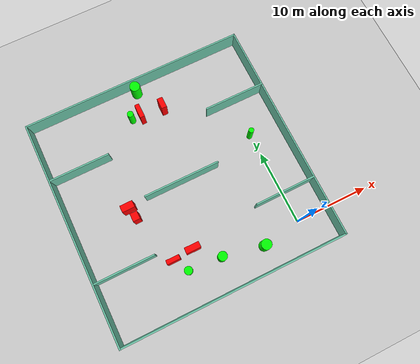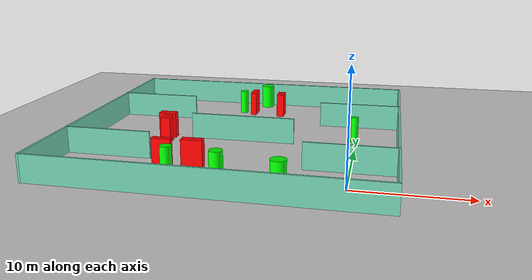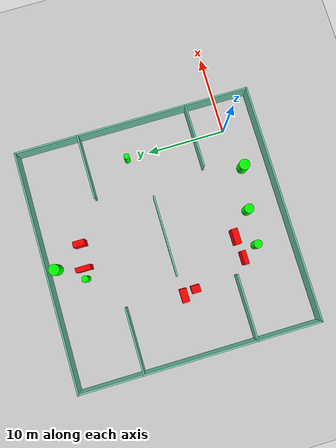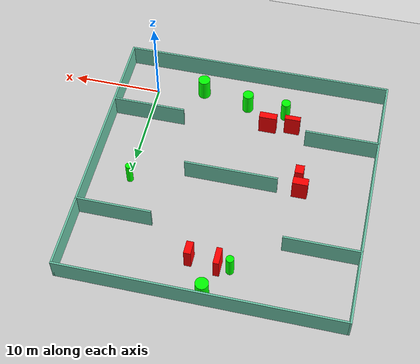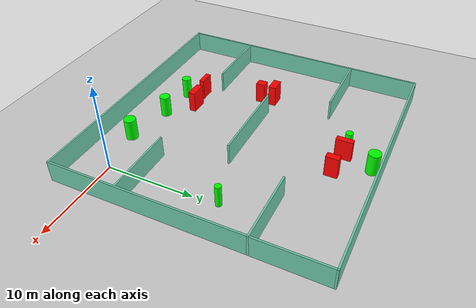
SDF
<sdf version="1.7">
 <world name="default">
  <light name="sun" type="directional">
   <pose>0 0 10 0 -0 0</pose>
   <diffuse>0.8 0.8 0.8 1</diffuse>
   <specular>0.2 0.2 0.2 1</specular>
   <attenuation>
    <range>1000</range>
    <constant>0.9</constant>
    <linear>0.01</linear>
    <quadratic>0.001</quadratic>
   </attenuation>
   <direction>-0.5 0.1 -0.9</direction>
   <spot><inner_angle>0</inner_angle><outer_angle>0</outer_angle><falloff>0</falloff></spot>
  </light>
  <model name="ground_plane">
   <static>1</static>
   <link name="link">
    <collision name="collision">
     <geometry><plane><normal>0 0 1</normal><size>100 100</size></plane></geometry>
     <surface>
      <contact><collide_bitmask>65535</collide_bitmask></contact>
      <friction><ode><mu>100</mu><mu2>50</mu2></ode></friction>
     </surface>
    </collision>
    <visual name="visual">
     <cast_shadows>0</cast_shadows>
     <geometry><plane><normal>0 0 1</normal><size>100 100</size></plane></geometry>
     <material>
      <script><uri>file://media/materials/scripts/gazebo.material</uri><name>Gazebo/Grey</name></script>
     </material>
    </visual>
   </link>
  </model>
  <gravity>0 0 -9.8</gravity>
  <magnetic_field>6e-06 2.3e-05 -4.2e-05</magnetic_field>
  <atmosphere type="adiabatic"/>
  <physics type="ode">
   <max_step_size>0.001</max_step_size>
   <real_time_factor>1</real_time_factor>
   <real_time_update_rate>1000</real_time_update_rate>
  </physics>
  <scene><ambient>0.4 0.4 0.4 1</ambient><background>0.7 0.7 0.7 1</background><shadows>1</shadows></scene>
  <spherical_coordinates>
   <surface_model>EARTH_WGS84</surface_model>
   <latitude_deg>0</latitude_deg>
   <longitude_deg>0</longitude_deg>
   <elevation>0</elevation>
   <heading_deg>0</heading_deg>
  </spherical_coordinates>
  <model name="my_base_walls">
   <link name="Wall_10">
    <collision name="Wall_10_Collision">
     <geometry><box><size>8.2 0.2 2.5</size></box></geometry>
     <pose>0 0 1.25 0 -0 0</pose>
    </collision>
    <visual name="Wall_10_Visual">
     <pose>0 0 1.25 0 -0 0</pose>
     <geometry><box><size>8.2 0.2 2.5</size></box></geometry>
     <material>
      <script><uri>file://media/materials/scripts/gazebo.material</uri><name>Gazebo/Grey</name></script>
      <ambient>0.435294 0.796078 0.67451 1</ambient>
     </material>
     <meta><layer>0</layer></meta>
    </visual>
    <pose>-11 -7 0 0 -0 0</pose>
   </link>
   <link name="Wall_12">
    <collision name="Wall_12_Collision">
     <geometry><box><size>8.2 0.2 2.5</size></box></geometry>
     <pose>0 0 1.25 0 -0 0</pose>
    </collision>
    <visual name="Wall_12_Visual">
     <pose>0 0 1.25 0 -0 0</pose>
     <geometry><box><size>8.2 0.2 2.5</size></box></geometry>
     <material>
      <script><uri>file://media/materials/scripts/gazebo.material</uri><name>Gazebo/Grey</name></script>
      <ambient>0.435294 0.796078 0.67451 1</ambient>
     </material>
     <meta><layer>0</layer></meta>
    </visual>
    <pose>-11 7 0 0 -0 0</pose>
   </link>
   <link name="Wall_14">
    <collision name="Wall_14_Collision">
     <geometry><box><size>8.2 0.2 2.5</size></box></geometry>
     <pose>0 0 1.25 0 -0 0</pose>
    </collision>
    <visual name="Wall_14_Visual">
     <pose>0 0 1.25 0 -0 0</pose>
     <geometry><box><size>8.2 0.2 2.5</size></box></geometry>
     <material>
      <script><uri>file://media/materials/scripts/gazebo.material</uri><name>Gazebo/Grey</name></script>
      <ambient>0.435294 0.796078 0.67451 1</ambient>
     </material>
     <meta><layer>0</layer></meta>
    </visual>
    <pose>11 7 0 0 -0 3.14159</pose>
   </link>
   <link name="Wall_16">
    <collision name="Wall_16_Collision">
     <geometry><box><size>10.2 0.2 2.5</size></box></geometry>
     <pose>0 0 1.25 0 -0 0</pose>
    </collision>
    <visual name="Wall_16_Visual">
     <pose>0 0 1.25 0 -0 0</pose>
     <geometry><box><size>10.2 0.2 2.5</size></box></geometry>
     <material>
      <script><uri>file://media/materials/scripts/gazebo.material</uri><name>Gazebo/Grey</name></script>
      <ambient>0.435294 0.796078 0.67451 1</ambient>
     </material>
     <meta><layer>0</layer></meta>
    </visual>
    <pose>0 0 0 0 -0 3.14159</pose>
   </link>
   <link name="Wall_2">
    <collision name="Wall_2_Collision">
     <geometry><box><size>30.2 0.2 2.5</size></box></geometry>
     <pose>0 0 1.25 0 -0 0</pose>
    </collision>
    <visual name="Wall_2_Visual">
     <pose>0 0 1.25 0 -0 0</pose>
     <geometry><box><size>30.2 0.2 2.5</size></box></geometry>
     <material>
      <script><uri>file://media/materials/scripts/gazebo.material</uri><name>Gazebo/Grey</name></script>
      <ambient>0.435294 0.796078 0.67451 1</ambient>
     </material>
     <meta><layer>0</layer></meta>
    </visual>
    <pose>0 -15 0 0 -0 3.14159</pose>
   </link>
   <link name="Wall_3">
    <collision name="Wall_3_Collision">
     <geometry><box><size>30.2 0.2 2.5</size></box></geometry>
     <pose>0 0 1.25 0 -0 0</pose>
    </collision>
    <visual name="Wall_3_Visual">
     <pose>0 0 1.25 0 -0 0</pose>
     <geometry><box><size>30.2 0.2 2.5</size></box></geometry>
     <material>
      <script><uri>file://media/materials/scripts/gazebo.material</uri><name>Gazebo/Grey</name></script>
      <ambient>0.435294 0.796078 0.67451 1</ambient>
     </material>
     <meta><layer>0</layer></meta>
    </visual>
    <pose>-15 0 0 0 -0 1.5708</pose>
   </link>
   <link name="Wall_4">
    <collision name="Wall_4_Collision">
     <geometry><box><size>30.2 0.2 2.5</size></box></geometry>
     <pose>0 0 1.25 0 -0 0</pose>
    </collision>
    <visual name="Wall_4_Visual">
     <pose>0 0 1.25 0 -0 0</pose>
     <geometry><box><size>30.2 0.2 2.5</size></box></geometry>
     <material>
      <script><uri>file://media/materials/scripts/gazebo.material</uri><name>Gazebo/Grey</name></script>
      <ambient>0.435294 0.796078 0.67451 1</ambient>
     </material>
     <meta><layer>0</layer></meta>
    </visual>
    <pose>0 15 0 0 -0 0</pose>
   </link>
   <link name="Wall_6">
    <collision name="Wall_6_Collision">
     <geometry><box><size>30.2 0.2 2.5</size></box></geometry>
     <pose>0 0 1.25 0 -0 0</pose>
    </collision>
    <visual name="Wall_6_Visual">
     <pose>0 0 1.25 0 -0 0</pose>
     <geometry><box><size>30.2 0.2 2.5</size></box></geometry>
     <material>
      <script><uri>file://media/materials/scripts/gazebo.material</uri><name>Gazebo/Grey</name></script>
      <ambient>0.435294 0.796078 0.67451 1</ambient>
     </material>
     <meta><layer>0</layer></meta>
    </visual>
    <pose>15 0 0 0 -0 1.5708</pose>
   </link>
   <link name="Wall_8">
    <collision name="Wall_8_Collision">
     <geometry><box><size>8.2 0.2 2.5</size></box></geometry>
     <pose>0 0 1.25 0 -0 0</pose>
    </collision>
    <visual name="Wall_8_Visual">
     <pose>0 0 1.25 0 -0 0</pose>
     <geometry><box><size>8.2 0.2 2.5</size></box></geometry>
     <material>
      <script><uri>file://media/materials/scripts/gazebo.material</uri><name>Gazebo/Grey</name></script>
      <ambient>0.435294 0.796078 0.67451 1</ambient>
     </material>
     <meta><layer>0</layer></meta>
    </visual>
    <pose>11 -7 0 0 -0 3.14159</pose>
   </link>
   <static>1</static>
   <pose>-11 11 0 0 -0 0</pose>
  </model>
  <model name="cylinder1">
   <static>1</static>
   <link name="link">
    <inertial>
     <mass>1</mass>
     <inertia><ixx>0.5</ixx><ixy>0</ixy><ixz>0</ixz><iyy>0.5</iyy><iyz>0</iyz><izz>1</izz></inertia>
    </inertial>
    <collision name="collision">
     <geometry><cylinder><radius>0.6808226055656238</radius><length>2.5</length></cylinder></geometry>
    </collision>
    <visual name="visual">
     <geometry><cylinder><radius>0.6808226055656238</radius><length>2.5</length></cylinder></geometry>
     <material>
      <ambient>0 1 0 1</ambient>
      <diffuse>0 1 0 1</diffuse>
      <specular>0.1 0.1 0.1 1</specular>
      <emissive>0 0 0 0</emissive>
     </material>
    </visual>
   </link>
   <pose>-5.292594961665177 -0.8580341604645096 1.25 0 0 0</pose>
  </model>
  <model name="cylinder2">
   <static>1</static>
   <link name="link">
    <inertial>
     <mass>1</mass>
     <inertia><ixx>0.5</ixx><ixy>0</ixy><ixz>0</ixz><iyy>0.5</iyy><iyz>0</iyz><izz>1</izz></inertia>
    </inertial>
    <collision name="collision">
     <geometry><cylinder><radius>0.5222826143256134</radius><length>2.5</length></cylinder></geometry>
    </collision>
    <visual name="visual">
     <geometry><cylinder><radius>0.5222826143256134</radius><length>2.5</length></cylinder></geometry>
     <material>
      <ambient>0 1 0 1</ambient>
      <diffuse>0 1 0 1</diffuse>
      <specular>0.1 0.1 0.1 1</specular>
      <emissive>0 0 0 0</emissive>
     </material>
    </visual>
   </link>
   <pose>-15.109570983426243 0.5168929576662862 1.25 0 0 0</pose>
  </model>
  <model name="cylinder3">
   <static>1</static>
   <link name="link">
    <inertial>
     <mass>1</mass>
     <inertia><ixx>0.5</ixx><ixy>0</ixy><ixz>0</ixz><iyy>0.5</iyy><iyz>0</iyz><izz>1</izz></inertia>
    </inertial>
    <collision name="collision">
     <geometry><cylinder><radius>0.41621945470406385</radius><length>2.5</length></cylinder></geometry>
    </collision>
    <visual name="visual">
     <geometry><cylinder><radius>0.41621945470406385</radius><length>2.5</length></cylinder></geometry>
     <material>
      <ambient>0 1 0 1</ambient>
      <diffuse>0 1 0 1</diffuse>
      <specular>0.1 0.1 0.1 1</specular>
      <emissive>0 0 0 0</emissive>
     </material>
    </visual>
   </link>
   <pose>-13.26889874745968 21.702552312390814 1.25 0 0 0</pose>
  </model>
  <model name="cylinder4">
   <static>1</static>
   <link name="link">
    <inertial>
     <mass>1</mass>
     <inertia><ixx>0.5</ixx><ixy>0</ixy><ixz>0</ixz><iyy>0.5</iyy><iyz>0</iyz><izz>1</izz></inertia>
    </inertial>
    <collision name="collision">
     <geometry><cylinder><radius>0.35362587839731785</radius><length>2.5</length></cylinder></geometry>
    </collision>
    <visual name="visual">
     <geometry><cylinder><radius>0.35362587839731785</radius><length>2.5</length></cylinder></geometry>
     <material>
      <ambient>0 1 0 1</ambient>
      <diffuse>0 1 0 1</diffuse>
      <specular>0.1 0.1 0.1 1</specular>
      <emissive>0 0 0 0</emissive>
     </material>
    </visual>
   </link>
   <pose>-0.21112597219388363 12.847654239967717 1.25 0 0 0</pose>
  </model>
  <model name="cylinder5">
   <static>1</static>
   <link name="link">
    <inertial>
     <mass>1</mass>
     <inertia><ixx>0.5</ixx><ixy>0</ixy><ixz>0</ixz><iyy>0.5</iyy><iyz>0</iyz><izz>1</izz></inertia>
    </inertial>
    <collision name="collision">
     <geometry><cylinder><radius>0.6906727592918745</radius><length>2.5</length></cylinder></geometry>
    </collision>
    <visual name="visual">
     <geometry><cylinder><radius>0.6906727592918745</radius><length>2.5</length></cylinder></geometry>
     <material>
      <ambient>0 1 0 1</ambient>
      <diffuse>0 1 0 1</diffuse>
      <specular>0.1 0.1 0.1 1</specular>
      <emissive>0 0 0 0</emissive>
     </material>
    </visual>
   </link>
   <pose>-11.164006241411322 24.994157682668277 1.25 0 0 0</pose>
  </model>
  <model name="cylinder6">
   <static>1</static>
   <link name="link">
    <inertial>
     <mass>1</mass>
     <inertia><ixx>0.5</ixx><ixy>0</ixy><ixz>0</ixz><iyy>0.5</iyy><iyz>0</iyz><izz>1</izz></inertia>
    </inertial>
    <collision name="collision">
     <geometry><cylinder><radius>0.5989357960598658</radius><length>2.5</length></cylinder></geometry>
    </collision>
    <visual name="visual">
     <geometry><cylinder><radius>0.5989357960598658</radius><length>2.5</length></cylinder></geometry>
     <material>
      <ambient>0 1 0 1</ambient>
      <diffuse>0 1 0 1</diffuse>
      <specular>0.1 0.1 0.1 1</specular>
      <emissive>0 0 0 0</emissive>
     </material>
    </visual>
   </link>
   <pose>-10.682652921598093 0.22967292817739393 1.25 0 0 0</pose>
  </model>
  <model name="box1">
   <static>1</static>
   <link name="link">
    <inertial>
     <mass>1</mass>
     <inertia><ixx>0.083</ixx><ixy>0</ixy><ixz>0</ixz><iyy>0.083</iyy><iyz>0</iyz><izz>0.083</izz></inertia>
    </inertial>
    <collision name="collision">
     <geometry><box><size>0.7519098027915485 1.458400487628627 2.5</size></box></geometry>
    </collision>
    <visual name="visual">
     <geometry><box><size>0.7519098027915485 1.458400487628627 2.5</size></box></geometry>
     <material>
      <ambient>1 0 0 1</ambient>
      <diffuse>1 0 0 1</diffuse>
      <specular>0.1 0.1 0.1 1</specular>
      <emissive>0 0 0 0</emissive>
     </material>
    </visual>
    <sensor name="my_contact" type="contact">
     <contact><collision>box_collision</collision><topic>__default_topic__</topic></contact>
    </sensor>
   </link>
   <pose>-8.932721206291355 21.32113591496437 1.25 0 0 0</pose>
  </model>
  <model name="box2">
   <static>1</static>
   <link name="link">
    <inertial>
     <mass>1</mass>
     <inertia><ixx>0.083</ixx><ixy>0</ixy><ixz>0</ixz><iyy>0.083</iyy><iyz>0</iyz><izz>0.083</izz></inertia>
    </inertial>
    <collision name="collision">
     <geometry><box><size>1.6758209601003209 0.8982693339057024 2.5</size></box></geometry>
    </collision>
    <visual name="visual">
     <geometry><box><size>1.6758209601003209 0.8982693339057024 2.5</size></box></geometry>
     <material>
      <ambient>1 0 0 1</ambient>
      <diffuse>1 0 0 1</diffuse>
      <specular>0.1 0.1 0.1 1</specular>
      <emissive>0 0 0 0</emissive>
     </material>
    </visual>
    <sensor name="my_contact" type="contact">
     <contact><collision>box_collision</collision><topic>__default_topic__</topic></contact>
    </sensor>
   </link>
   <pose>-18.52654433839707 10.802585972385508 1.25 0 0 0</pose>
  </model>
  <model name="box3">
   <static>1</static>
   <link name="link">
    <inertial>
     <mass>1</mass>
     <inertia><ixx>0.083</ixx><ixy>0</ixy><ixz>0</ixz><iyy>0.083</iyy><iyz>0</iyz><izz>0.083</izz></inertia>
    </inertial>
    <collision name="collision">
     <geometry><box><size>0.9402113166308899 1.072682111316795 2.5</size></box></geometry>
    </collision>
    <visual name="visual">
     <geometry><box><size>0.9402113166308899 1.072682111316795 2.5</size></box></geometry>
     <material>
      <ambient>1 0 0 1</ambient>
      <diffuse>1 0 0 1</diffuse>
      <specular>0.1 0.1 0.1 1</specular>
      <emissive>0 0 0 0</emissive>
     </material>
    </visual>
    <sensor name="my_contact" type="contact">
     <contact><collision>box_collision</collision><topic>__default_topic__</topic></contact>
    </sensor>
   </link>
   <pose>-18.161551724645427 9.269822605113644 1.25 0 0 0</pose>
  </model>
  <model name="box4">
   <static>1</static>
   <link name="link">
    <inertial>
     <mass>1</mass>
     <inertia><ixx>0.083</ixx><ixy>0</ixy><ixz>0</ixz><iyy>0.083</iyy><iyz>0</iyz><izz>0.083</izz></inertia>
    </inertial>
    <collision name="collision">
     <geometry><box><size>0.6180692459420453 1.8846497122352441 2.5</size></box></geometry>
    </collision>
    <visual name="visual">
     <geometry><box><size>0.6180692459420453 1.8846497122352441 2.5</size></box></geometry>
     <material>
      <ambient>1 0 0 1</ambient>
      <diffuse>1 0 0 1</diffuse>
      <specular>0.1 0.1 0.1 1</specular>
      <emissive>0 0 0 0</emissive>
     </material>
    </visual>
    <sensor name="my_contact" type="contact">
     <contact><collision>box_collision</collision><topic>__default_topic__</topic></contact>
    </sensor>
   </link>
   <pose>-11.998297522685952 21.601383008844646 1.25 0 0 0</pose>
  </model>
  <model name="box5">
   <static>1</static>
   <link name="link">
    <inertial>
     <mass>1</mass>
     <inertia><ixx>0.083</ixx><ixy>0</ixy><ixz>0</ixz><iyy>0.083</iyy><iyz>0</iyz><izz>0.083</izz></inertia>
    </inertial>
    <collision name="collision">
     <geometry><box><size>1.7344568802396323 0.5793097729440346 2.5</size></box></geometry>
    </collision>
    <visual name="visual">
     <geometry><box><size>1.7344568802396323 0.5793097729440346 2.5</size></box></geometry>
     <material>
      <ambient>1 0 0 1</ambient>
      <diffuse>1 0 0 1</diffuse>
      <specular>0.1 0.1 0.1 1</specular>
      <emissive>0 0 0 0</emissive>
     </material>
    </visual>
    <sensor name="my_contact" type="contact">
     <contact><collision>box_collision</collision><topic>__default_topic__</topic></contact>
    </sensor>
   </link>
   <pose>-16.21287876132262 2.4891389564755775 1.25 0 0 0</pose>
  </model>
  <model name="box6">
   <static>1</static>
   <link name="link">
    <inertial>
     <mass>1</mass>
     <inertia><ixx>0.083</ixx><ixy>0</ixy><ixz>0</ixz><iyy>0.083</iyy><iyz>0</iyz><izz>0.083</izz></inertia>
    </inertial>
    <collision name="collision">
     <geometry><box><size>1.9494668821081884 0.7876078660458843 2.5</size></box></geometry>
    </collision>
    <visual name="visual">
     <geometry><box><size>1.9494668821081884 0.7876078660458843 2.5</size></box></geometry>
     <material>
      <ambient>1 0 0 1</ambient>
      <diffuse>1 0 0 1</diffuse>
      <specular>0.1 0.1 0.1 1</specular>
      <emissive>0 0 0 0</emissive>
     </material>
    </visual>
    <sensor name="my_contact" type="contact">
     <contact><collision>box_collision</collision><topic>__default_topic__</topic></contact>
    </sensor>
   </link>
   <pose>-13.483288318692907 2.74609523066559 1.25 0 0 0</pose>
  </model>
 </world>
</sdf>
